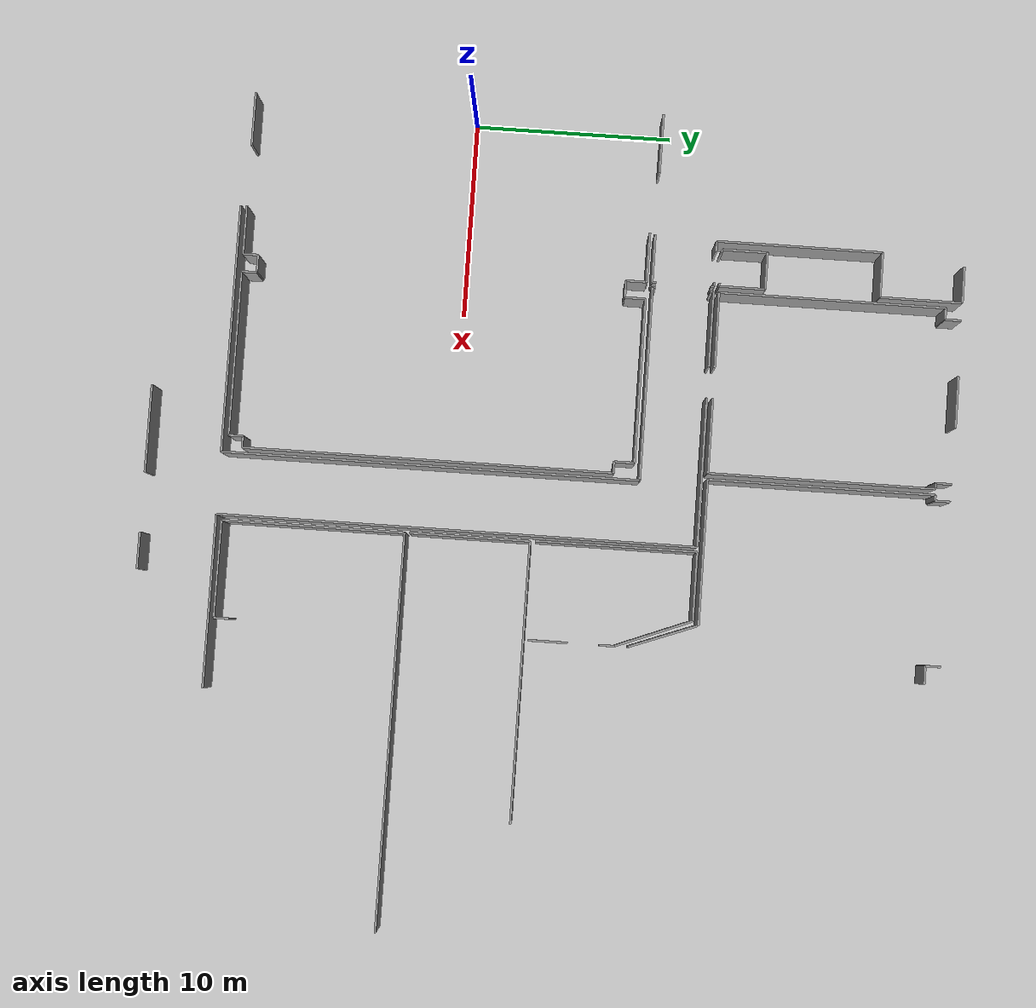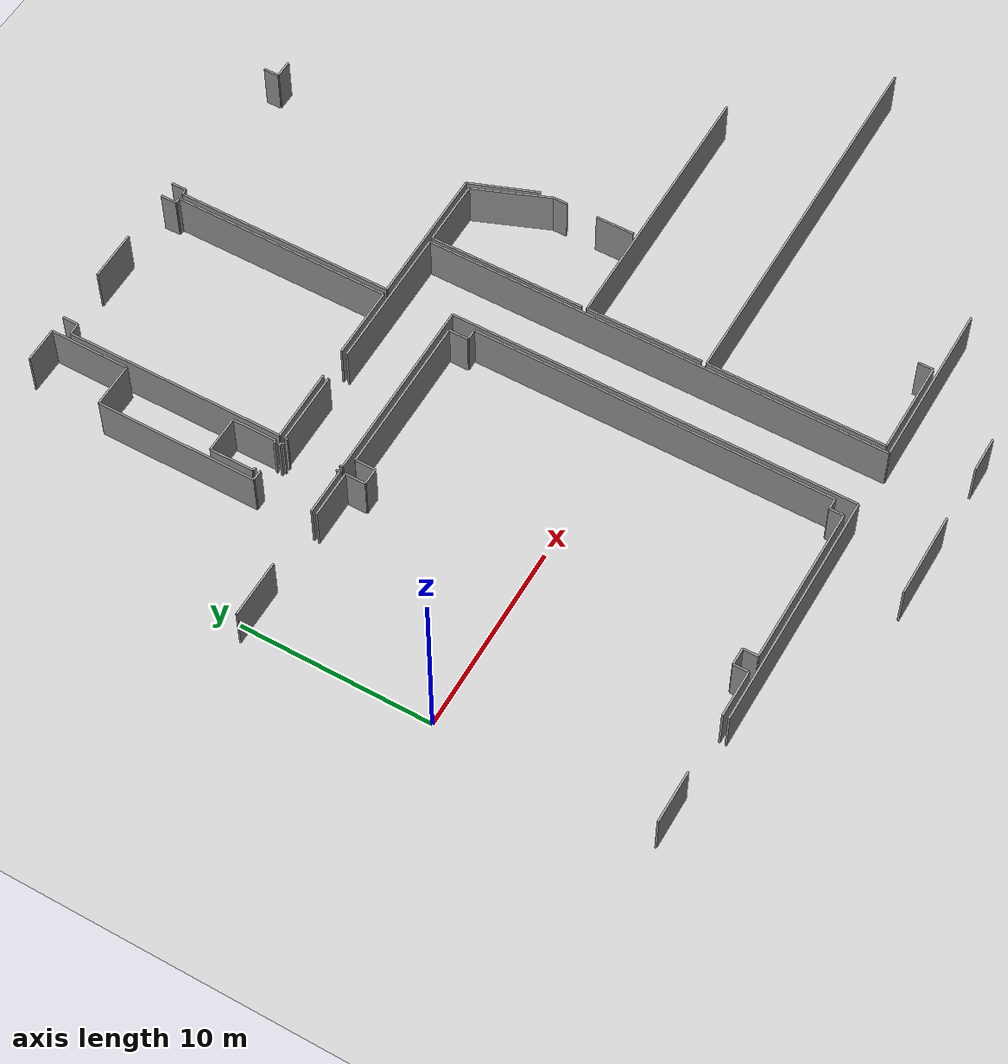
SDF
<sdf version="1.6">
 <world name="default">
  <model name="ground_plane">
   <static>1</static>
   <link name="link">
    <collision name="collision">
     <geometry><plane><normal>0 0 1</normal><size>100 100</size></plane></geometry>
     <surface><friction><ode><mu>100</mu><mu2>50</mu2></ode></friction></surface>
    </collision>
    <visual name="visual">
     <cast_shadows>0</cast_shadows>
     <geometry><plane><normal>0 0 1</normal><size>100 100</size></plane></geometry>
     <material>
      <script><uri>file://media/materials/scripts/gazebo.material</uri><name>Gazebo/Grey</name></script>
     </material>
    </visual>
   </link>
  </model>
  <model name="50045366">
   <static>1</static>
   <link name="Wall_68">
    <collision name="Wall_68_Collision">
     <geometry><box><size>2.514892482 0.1 2.5</size></box></geometry>
     <pose>1.257446241 0 1.25 0 0 0</pose>
    </collision>
    <visual name="Wall_68_Visual">
     <pose>1.257446241 0 1.25 0 0 0</pose>
     <geometry><box><size>2.514892482 0.1 2.5</size></box></geometry>
     <material>
      <script><uri>file://media/materials/scripts/gazebo.material</uri><name>Gazebo/Grey</name></script>
      <ambient>1 1 1 1</ambient>
     </material>
    </visual>
    <pose>59.5367771272 -16.1177934994 0 0 0 0.0</pose>
   </link>
   <link name="Wall_69">
    <collision name="Wall_69_Collision">
     <geometry><box><size>1.05066619248 0.1 2.5</size></box></geometry>
     <pose>0.525333096239 0 1.25 0 0 0</pose>
    </collision>
    <visual name="Wall_69_Visual">
     <pose>0.525333096239 0 1.25 0 0 0</pose>
     <geometry><box><size>1.05066619248 0.1 2.5</size></box></geometry>
     <material>
      <script><uri>file://media/materials/scripts/gazebo.material</uri><name>Gazebo/Grey</name></script>
      <ambient>1 1 1 1</ambient>
     </material>
    </visual>
    <pose>62.0516696092 -16.1177934994 0 0 0 -1.57079632679</pose>
   </link>
   <link name="Wall_70">
    <collision name="Wall_70_Collision">
     <geometry><box><size>0.8621762711 0.1 2.5</size></box></geometry>
     <pose>0.43108813555 0 1.25 0 0 0</pose>
    </collision>
    <visual name="Wall_70_Visual">
     <pose>0.43108813555 0 1.25 0 0 0</pose>
     <geometry><box><size>0.8621762711 0.1 2.5</size></box></geometry>
     <material>
      <script><uri>file://media/materials/scripts/gazebo.material</uri><name>Gazebo/Grey</name></script>
      <ambient>1 1 1 1</ambient>
     </material>
    </visual>
    <pose>62.0516696092 -17.1684596919 0 0 0 0.0</pose>
   </link>
   <link name="Wall_71">
    <collision name="Wall_71_Collision">
     <geometry><box><size>1.0487609709 0.1 2.5</size></box></geometry>
     <pose>0.52438048545 0 1.25 0 0 0</pose>
    </collision>
    <visual name="Wall_71_Visual">
     <pose>0.52438048545 0 1.25 0 0 0</pose>
     <geometry><box><size>1.0487609709 0.1 2.5</size></box></geometry>
     <material>
      <script><uri>file://media/materials/scripts/gazebo.material</uri><name>Gazebo/Grey</name></script>
      <ambient>1 1 1 1</ambient>
     </material>
    </visual>
    <pose>62.9138458803 -17.1684596919 0 0 0 1.57079632679</pose>
   </link>
   <link name="Wall_72">
    <collision name="Wall_72_Collision">
     <geometry><box><size>8.38348299907 0.1 2.5</size></box></geometry>
     <pose>4.19174149954 0 1.25 0 0 0</pose>
    </collision>
    <visual name="Wall_72_Visual">
     <pose>4.19174149954 0 1.25 0 0 0</pose>
     <geometry><box><size>8.38348299907 0.1 2.5</size></box></geometry>
     <material>
      <script><uri>file://media/materials/scripts/gazebo.material</uri><name>Gazebo/Grey</name></script>
      <ambient>1 1 1 1</ambient>
     </material>
    </visual>
    <pose>62.9138458803 -16.119698721 0 0 0 0.0</pose>
   </link>
   <link name="Wall_73">
    <collision name="Wall_73_Collision">
     <geometry><box><size>1.02627935629 0.1 2.5</size></box></geometry>
     <pose>0.513139678145 0 1.25 0 0 0</pose>
    </collision>
    <visual name="Wall_73_Visual">
     <pose>0.513139678145 0 1.25 0 0 0</pose>
     <geometry><box><size>1.02627935629 0.1 2.5</size></box></geometry>
     <material>
      <script><uri>file://media/materials/scripts/gazebo.material</uri><name>Gazebo/Grey</name></script>
      <ambient>1 1 1 1</ambient>
     </material>
    </visual>
    <pose>71.2973288793 -16.119698721 0 0 0 -1.57079632679</pose>
   </link>
   <link name="Wall_74">
    <collision name="Wall_74_Collision">
     <geometry><box><size>0.579568403805 0.1 2.5</size></box></geometry>
     <pose>0.289784201903 0 1.25 0 0 0</pose>
    </collision>
    <visual name="Wall_74_Visual">
     <pose>0.289784201903 0 1.25 0 0 0</pose>
     <geometry><box><size>0.579568403805 0.1 2.5</size></box></geometry>
     <material>
      <script><uri>file://media/materials/scripts/gazebo.material</uri><name>Gazebo/Grey</name></script>
      <ambient>1 1 1 1</ambient>
     </material>
    </visual>
    <pose>71.2973288793 -17.1459780773 0 0 0 0.0</pose>
   </link>
   <link name="Wall_75">
    <collision name="Wall_75_Collision">
     <geometry><box><size>18.8131739721 0.1 2.5</size></box></geometry>
     <pose>9.40658698607 0 1.25 0 0 0</pose>
    </collision>
    <visual name="Wall_75_Visual">
     <pose>9.40658698607 0 1.25 0 0 0</pose>
     <geometry><box><size>18.8131739721 0.1 2.5</size></box></geometry>
     <material>
      <script><uri>file://media/materials/scripts/gazebo.material</uri><name>Gazebo/Grey</name></script>
      <ambient>1 1 1 1</ambient>
     </material>
    </visual>
    <pose>71.8768972832 -17.1459780773 0 0 0 -1.57079632679</pose>
   </link>
   <link name="Wall_76">
    <collision name="Wall_76_Collision">
     <geometry><box><size>0.577155123141 0.1 2.5</size></box></geometry>
     <pose>0.28857756157 0 1.25 0 0 0</pose>
    </collision>
    <visual name="Wall_76_Visual">
     <pose>0.28857756157 0 1.25 0 0 0</pose>
     <geometry><box><size>0.577155123141 0.1 2.5</size></box></geometry>
     <material>
      <script><uri>file://media/materials/scripts/gazebo.material</uri><name>Gazebo/Grey</name></script>
      <ambient>1 1 1 1</ambient>
     </material>
    </visual>
    <pose>71.8768972832 -35.9591520494 0 0 0 3.14159265359</pose>
   </link>
   <link name="Wall_77">
    <collision name="Wall_77_Collision">
     <geometry><box><size>0.726143450483 0.1 2.5</size></box></geometry>
     <pose>0.363071725242 0 1.25 0 0 0</pose>
    </collision>
    <visual name="Wall_77_Visual">
     <pose>0.363071725242 0 1.25 0 0 0</pose>
     <geometry><box><size>0.726143450483 0.1 2.5</size></box></geometry>
     <material>
      <script><uri>file://media/materials/scripts/gazebo.material</uri><name>Gazebo/Grey</name></script>
      <ambient>1 1 1 1</ambient>
     </material>
    </visual>
    <pose>71.29974216 -35.9591520494 0 0 0 -1.57079632679</pose>
   </link>
   <link name="Wall_78">
    <collision name="Wall_78_Collision">
     <geometry><box><size>8.37446495027 0.1 2.5</size></box></geometry>
     <pose>4.18723247514 0 1.25 0 0 0</pose>
    </collision>
    <visual name="Wall_78_Visual">
     <pose>4.18723247514 0 1.25 0 0 0</pose>
     <geometry><box><size>8.37446495027 0.1 2.5</size></box></geometry>
     <material>
      <script><uri>file://media/materials/scripts/gazebo.material</uri><name>Gazebo/Grey</name></script>
      <ambient>1 1 1 1</ambient>
     </material>
    </visual>
    <pose>71.29974216 -36.6852954999 0 0 0 3.14159265359</pose>
   </link>
   <link name="Wall_79">
    <collision name="Wall_79_Collision">
     <geometry><box><size>0.77415503423 0.1 2.5</size></box></geometry>
     <pose>0.387077517115 0 1.25 0 0 0</pose>
    </collision>
    <visual name="Wall_79_Visual">
     <pose>0.387077517115 0 1.25 0 0 0</pose>
     <geometry><box><size>0.77415503423 0.1 2.5</size></box></geometry>
     <material>
      <script><uri>file://media/materials/scripts/gazebo.material</uri><name>Gazebo/Grey</name></script>
      <ambient>1 1 1 1</ambient>
     </material>
    </visual>
    <pose>62.9252772097 -36.6852954999 0 0 0 1.57079632679</pose>
   </link>
   <link name="Wall_80">
    <collision name="Wall_80_Collision">
     <geometry><box><size>0.896851303807 0.1 2.5</size></box></geometry>
     <pose>0.448425651903 0 1.25 0 0 0</pose>
    </collision>
    <visual name="Wall_80_Visual">
     <pose>0.448425651903 0 1.25 0 0 0</pose>
     <geometry><box><size>0.896851303807 0.1 2.5</size></box></geometry>
     <material>
      <script><uri>file://media/materials/scripts/gazebo.material</uri><name>Gazebo/Grey</name></script>
      <ambient>1 1 1 1</ambient>
     </material>
    </visual>
    <pose>62.9252772097 -35.9111404656 0 0 0 3.14159265359</pose>
   </link>
   <link name="Wall_81">
    <collision name="Wall_81_Collision">
     <geometry><box><size>0.772376827425 0.1 2.5</size></box></geometry>
     <pose>0.386188413713 0 1.25 0 0 0</pose>
    </collision>
    <visual name="Wall_81_Visual">
     <pose>0.386188413713 0 1.25 0 0 0</pose>
     <geometry><box><size>0.772376827425 0.1 2.5</size></box></geometry>
     <material>
      <script><uri>file://media/materials/scripts/gazebo.material</uri><name>Gazebo/Grey</name></script>
      <ambient>1 1 1 1</ambient>
     </material>
    </visual>
    <pose>62.0284259059 -35.9111404656 0 0 0 -1.57079632679</pose>
   </link>
   <link name="Wall_82">
    <collision name="Wall_82_Collision">
     <geometry><box><size>2.47907431634 0.1 2.5</size></box></geometry>
     <pose>1.23953715817 0 1.25 0 0 0</pose>
    </collision>
    <visual name="Wall_82_Visual">
     <pose>1.23953715817 0 1.25 0 0 0</pose>
     <geometry><box><size>2.47907431634 0.1 2.5</size></box></geometry>
     <material>
      <script><uri>file://media/materials/scripts/gazebo.material</uri><name>Gazebo/Grey</name></script>
      <ambient>1 1 1 1</ambient>
     </material>
    </visual>
    <pose>62.0284259059 -36.6835172931 0 0 0 3.14159265359</pose>
   </link>
   <link name="Wall_83">
    <collision name="Wall_83_Collision">
     <geometry><box><size>2.71519477715 0.1 2.5</size></box></geometry>
     <pose>1.35759738858 0 1.25 0 0 0</pose>
    </collision>
    <visual name="Wall_83_Visual">
     <pose>1.35759738858 0 1.25 0 0 0</pose>
     <geometry><box><size>2.71519477715 0.1 2.5</size></box></geometry>
     <material>
      <script><uri>file://media/materials/scripts/gazebo.material</uri><name>Gazebo/Grey</name></script>
      <ambient>1 1 1 1</ambient>
     </material>
    </visual>
    <pose>56.4070061348 -36.6835172931 0 0 0 3.14159265359</pose>
   </link>
   <link name="Wall_198">
    <collision name="Wall_198_Collision">
     <geometry><box><size>1.8591152151 0.1 2.5</size></box></geometry>
     <pose>0.92955760755 0 1.25 0 0 0</pose>
    </collision>
    <visual name="Wall_198_Visual">
     <pose>0.92955760755 0 1.25 0 0 0</pose>
     <geometry><box><size>1.8591152151 0.1 2.5</size></box></geometry>
     <material>
      <script><uri>file://media/materials/scripts/gazebo.material</uri><name>Gazebo/Grey</name></script>
      <ambient>1 1 1 1</ambient>
     </material>
    </visual>
    <pose>60.155847125 -0.0548703814254 0 0 0 0.0</pose>
   </link>
   <link name="Wall_199">
    <collision name="Wall_199_Collision">
     <geometry><box><size>4.18297748028 0.1 2.5</size></box></geometry>
     <pose>2.09148874014 0 1.25 0 0 0</pose>
    </collision>
    <visual name="Wall_199_Visual">
     <pose>2.09148874014 0 1.25 0 0 0</pose>
     <geometry><box><size>4.18297748028 0.1 2.5</size></box></geometry>
     <material>
      <script><uri>file://media/materials/scripts/gazebo.material</uri><name>Gazebo/Grey</name></script>
      <ambient>1 1 1 1</ambient>
     </material>
    </visual>
    <pose>62.0149623401 -0.0548703814254 0 0 0 -1.57079632679</pose>
   </link>
   <link name="Wall_200">
    <collision name="Wall_200_Collision">
     <geometry><box><size>2.3021427392 0.1 2.5</size></box></geometry>
     <pose>1.1510713696 0 1.25 0 0 0</pose>
    </collision>
    <visual name="Wall_200_Visual">
     <pose>1.1510713696 0 1.25 0 0 0</pose>
     <geometry><box><size>2.3021427392 0.1 2.5</size></box></geometry>
     <material>
      <script><uri>file://media/materials/scripts/gazebo.material</uri><name>Gazebo/Grey</name></script>
      <ambient>1 1 1 1</ambient>
     </material>
    </visual>
    <pose>62.0149623401 -4.23784786171 0 0 0 3.14159265359</pose>
   </link>
   <link name="Wall_201">
    <collision name="Wall_201_Collision">
     <geometry><box><size>8.4532141088 0.1 2.5</size></box></geometry>
     <pose>4.2266070544 0 1.25 0 0 0</pose>
    </collision>
    <visual name="Wall_201_Visual">
     <pose>4.2266070544 0 1.25 0 0 0</pose>
     <geometry><box><size>8.4532141088 0.1 2.5</size></box></geometry>
     <material>
      <script><uri>file://media/materials/scripts/gazebo.material</uri><name>Gazebo/Grey</name></script>
      <ambient>1 1 1 1</ambient>
     </material>
    </visual>
    <pose>59.7128196009 -4.23784786171 0 0 0 -1.57079632679</pose>
   </link>
   <link name="Wall_202">
    <collision name="Wall_202_Collision">
     <geometry><box><size>0.552006198321 0.1 2.5</size></box></geometry>
     <pose>0.27600309916 0 1.25 0 0 0</pose>
    </collision>
    <visual name="Wall_202_Visual">
     <pose>0.27600309916 0 1.25 0 0 0</pose>
     <geometry><box><size>0.552006198321 0.1 2.5</size></box></geometry>
     <material>
      <script><uri>file://media/materials/scripts/gazebo.material</uri><name>Gazebo/Grey</name></script>
      <ambient>1 1 1 1</ambient>
     </material>
    </visual>
    <pose>59.7128196009 -12.6910619705 0 0 0 0.0</pose>
   </link>
   <link name="Wall_203">
    <collision name="Wall_203_Collision">
     <geometry><box><size>0.208431240553 0.1 2.5</size></box></geometry>
     <pose>0.104215620277 0 1.25 0 0 0</pose>
    </collision>
    <visual name="Wall_203_Visual">
     <pose>0.104215620277 0 1.25 0 0 0</pose>
     <geometry><box><size>0.208431240553 0.1 2.5</size></box></geometry>
     <material>
      <script><uri>file://media/materials/scripts/gazebo.material</uri><name>Gazebo/Grey</name></script>
      <ambient>1 1 1 1</ambient>
     </material>
    </visual>
    <pose>61.8337122607 -12.6910619705 0 0 0 0.0</pose>
   </link>
   <link name="Wall_204">
    <collision name="Wall_204_Collision">
     <geometry><box><size>0.149242356886 0.1 2.5</size></box></geometry>
     <pose>0.0746211784431 0 1.25 0 0 0</pose>
    </collision>
    <visual name="Wall_204_Visual">
     <pose>0.0746211784431 0 1.25 0 0 0</pose>
     <geometry><box><size>0.149242356886 0.1 2.5</size></box></geometry>
     <material>
      <script><uri>file://media/materials/scripts/gazebo.material</uri><name>Gazebo/Grey</name></script>
      <ambient>1 1 1 1</ambient>
     </material>
    </visual>
    <pose>62.0421435013 -12.6910619705 0 0 0 -1.57079632679</pose>
   </link>
   <link name="Wall_205">
    <collision name="Wall_205_Collision">
     <geometry><box><size>0.201572442875 0.1 2.5</size></box></geometry>
     <pose>0.100786221438 0 1.25 0 0 0</pose>
    </collision>
    <visual name="Wall_205_Visual">
     <pose>0.100786221438 0 1.25 0 0 0</pose>
     <geometry><box><size>0.201572442875 0.1 2.5</size></box></geometry>
     <material>
      <script><uri>file://media/materials/scripts/gazebo.material</uri><name>Gazebo/Grey</name></script>
      <ambient>1 1 1 1</ambient>
     </material>
    </visual>
    <pose>62.0421435013 -15.6356454256 0 0 0 -1.57079632679</pose>
   </link>
   <link name="Wall_206">
    <collision name="Wall_206_Collision">
     <geometry><box><size>2.46764298688 0.1 2.5</size></box></geometry>
     <pose>1.23382149344 0 1.25 0 0 0</pose>
    </collision>
    <visual name="Wall_206_Visual">
     <pose>1.23382149344 0 1.25 0 0 0</pose>
     <geometry><box><size>2.46764298688 0.1 2.5</size></box></geometry>
     <material>
      <script><uri>file://media/materials/scripts/gazebo.material</uri><name>Gazebo/Grey</name></script>
      <ambient>1 1 1 1</ambient>
     </material>
    </visual>
    <pose>62.0421435013 -15.8372178684 0 0 0 3.14159265359</pose>
   </link>
   <link name="Wall_207">
    <collision name="Wall_207_Collision">
     <geometry><box><size>3.02109009364 0.1 2.5</size></box></geometry>
     <pose>1.51054504682 0 1.25 0 0 0</pose>
    </collision>
    <visual name="Wall_207_Visual">
     <pose>1.51054504682 0 1.25 0 0 0</pose>
     <geometry><box><size>3.02109009364 0.1 2.5</size></box></geometry>
     <material>
      <script><uri>file://media/materials/scripts/gazebo.material</uri><name>Gazebo/Grey</name></script>
      <ambient>1 1 1 1</ambient>
     </material>
    </visual>
    <pose>56.3940506281 -15.8372178684 0 0 0 3.13621116255</pose>
   </link>
   <link name="Wall_208">
    <collision name="Wall_208_Collision">
     <geometry><box><size>2.28626589272 0.1 2.5</size></box></geometry>
     <pose>1.14313294636 0 1.25 0 0 0</pose>
    </collision>
    <visual name="Wall_208_Visual">
     <pose>1.14313294636 0 1.25 0 0 0</pose>
     <geometry><box><size>2.28626589272 0.1 2.5</size></box></geometry>
     <material>
      <script><uri>file://media/materials/scripts/gazebo.material</uri><name>Gazebo/Grey</name></script>
      <ambient>1 1 1 1</ambient>
     </material>
    </visual>
    <pose>60.1205370185 -12.3716198194 0 0 0 1.57079632679</pose>
   </link>
   <link name="Wall_209">
    <collision name="Wall_209_Collision">
     <geometry><box><size>1.88858264216 0.1 2.5</size></box></geometry>
     <pose>0.944291321081 0 1.25 0 0 0</pose>
    </collision>
    <visual name="Wall_209_Visual">
     <pose>0.944291321081 0 1.25 0 0 0</pose>
     <geometry><box><size>1.88858264216 0.1 2.5</size></box></geometry>
     <material>
      <script><uri>file://media/materials/scripts/gazebo.material</uri><name>Gazebo/Grey</name></script>
      <ambient>1 1 1 1</ambient>
     </material>
    </visual>
    <pose>60.1205370185 -10.0853539267 0 0 0 0.0</pose>
   </link>
   <link name="Wall_210">
    <collision name="Wall_210_Collision">
     <geometry><box><size>2.32564047199 0.1 2.5</size></box></geometry>
     <pose>1.16282023599 0 1.25 0 0 0</pose>
    </collision>
    <visual name="Wall_210_Visual">
     <pose>1.16282023599 0 1.25 0 0 0</pose>
     <geometry><box><size>2.32564047199 0.1 2.5</size></box></geometry>
     <material>
      <script><uri>file://media/materials/scripts/gazebo.material</uri><name>Gazebo/Grey</name></script>
      <ambient>1 1 1 1</ambient>
     </material>
    </visual>
    <pose>62.0091196606 -10.0853539267 0 0 0 -1.57079632679</pose>
   </link>
   <link name="Wall_211">
    <collision name="Wall_211_Collision">
     <geometry><box><size>0.16905666129 0.1 2.5</size></box></geometry>
     <pose>0.0845283306449 0 1.25 0 0 0</pose>
    </collision>
    <visual name="Wall_211_Visual">
     <pose>0.0845283306449 0 1.25 0 0 0</pose>
     <geometry><box><size>0.16905666129 0.1 2.5</size></box></geometry>
     <material>
      <script><uri>file://media/materials/scripts/gazebo.material</uri><name>Gazebo/Grey</name></script>
      <ambient>1 1 1 1</ambient>
     </material>
    </visual>
    <pose>62.0091196606 -12.4109943986 0 0 0 3.14159265359</pose>
   </link>
   <link name="Wall_212">
    <collision name="Wall_212_Collision">
     <geometry><box><size>0.178657191913 0.1 2.5</size></box></geometry>
     <pose>0.0893285959566 0 1.25 0 0 0</pose>
    </collision>
    <visual name="Wall_212_Visual">
     <pose>0.0893285959566 0 1.25 0 0 0</pose>
     <geometry><box><size>0.178657191913 0.1 2.5</size></box></geometry>
     <material>
      <script><uri>file://media/materials/scripts/gazebo.material</uri><name>Gazebo/Grey</name></script>
      <ambient>1 1 1 1</ambient>
     </material>
    </visual>
    <pose>60.2948012854 -12.4109943986 0 0 0 2.9193765295</pose>
   </link>
   <link name="Wall_213">
    <collision name="Wall_213_Collision">
     <geometry><box><size>11.532433222 0.1 2.5</size></box></geometry>
     <pose>5.76621661099 0 1.25 0 0 0</pose>
    </collision>
    <visual name="Wall_213_Visual">
     <pose>5.76621661099 0 1.25 0 0 0</pose>
     <geometry><box><size>11.532433222 0.1 2.5</size></box></geometry>
     <material>
      <script><uri>file://media/materials/scripts/gazebo.material</uri><name>Gazebo/Grey</name></script>
      <ambient>1 1 1 1</ambient>
     </material>
    </visual>
    <pose>62.3299589742 -12.4098512657 0 0 0 1.57079632679</pose>
   </link>
   <link name="Wall_214">
    <collision name="Wall_214_Collision">
     <geometry><box><size>0.590999733269 0.1 2.5</size></box></geometry>
     <pose>0.295499866634 0 1.25 0 0 0</pose>
    </collision>
    <visual name="Wall_214_Visual">
     <pose>0.295499866634 0 1.25 0 0 0</pose>
     <geometry><box><size>0.590999733269 0.1 2.5</size></box></geometry>
     <material>
      <script><uri>file://media/materials/scripts/gazebo.material</uri><name>Gazebo/Grey</name></script>
      <ambient>1 1 1 1</ambient>
     </material>
    </visual>
    <pose>62.3299589742 -0.877418043718 0 0 0 0.0</pose>
   </link>
   <link name="Wall_215">
    <collision name="Wall_215_Collision">
     <geometry><box><size>0.835249139475 0.1 2.5</size></box></geometry>
     <pose>0.417624569737 0 1.25 0 0 0</pose>
    </collision>
    <visual name="Wall_215_Visual">
     <pose>0.417624569737 0 1.25 0 0 0</pose>
     <geometry><box><size>0.835249139475 0.1 2.5</size></box></geometry>
     <material>
      <script><uri>file://media/materials/scripts/gazebo.material</uri><name>Gazebo/Grey</name></script>
      <ambient>1 1 1 1</ambient>
     </material>
    </visual>
    <pose>62.9209587075 -0.877418043718 0 0 0 1.57079632679</pose>
   </link>
   <link name="Wall_216">
    <collision name="Wall_216_Collision">
     <geometry><box><size>2.64597172651 0.1 2.5</size></box></geometry>
     <pose>1.32298586326 0 1.25 0 0 0</pose>
    </collision>
    <visual name="Wall_216_Visual">
     <pose>1.32298586326 0 1.25 0 0 0</pose>
     <geometry><box><size>2.64597172651 0.1 2.5</size></box></geometry>
     <material>
      <script><uri>file://media/materials/scripts/gazebo.material</uri><name>Gazebo/Grey</name></script>
      <ambient>1 1 1 1</ambient>
     </material>
    </visual>
    <pose>65.7742185416 -0.0421689042436 0 0 0 0.0</pose>
   </link>
   <link name="Wall_217">
    <collision name="Wall_217_Collision">
     <geometry><box><size>0.83143869632 0.1 2.5</size></box></geometry>
     <pose>0.41571934816 0 1.25 0 0 0</pose>
    </collision>
    <visual name="Wall_217_Visual">
     <pose>0.41571934816 0 1.25 0 0 0</pose>
     <geometry><box><size>0.83143869632 0.1 2.5</size></box></geometry>
     <material>
      <script><uri>file://media/materials/scripts/gazebo.material</uri><name>Gazebo/Grey</name></script>
      <ambient>1 1 1 1</ambient>
     </material>
    </visual>
    <pose>71.2681154818 -0.0421689042436 0 0 0 -1.57079632679</pose>
   </link>
   <link name="Wall_218">
    <collision name="Wall_218_Collision">
     <geometry><box><size>0.290482783148 0.1 2.5</size></box></geometry>
     <pose>0.145241391574 0 1.25 0 0 0</pose>
    </collision>
    <visual name="Wall_218_Visual">
     <pose>0.145241391574 0 1.25 0 0 0</pose>
     <geometry><box><size>0.290482783148 0.1 2.5</size></box></geometry>
     <material>
      <script><uri>file://media/materials/scripts/gazebo.material</uri><name>Gazebo/Grey</name></script>
      <ambient>1 1 1 1</ambient>
     </material>
    </visual>
    <pose>71.2681154818 -0.873607600564 0 0 0 0.0</pose>
   </link>
   <link name="Wall_219">
    <collision name="Wall_219_Collision">
     <geometry><box><size>11.5121108585 0.1 2.5</size></box></geometry>
     <pose>5.75605542925 0 1.25 0 0 0</pose>
    </collision>
    <visual name="Wall_219_Visual">
     <pose>5.75605542925 0 1.25 0 0 0</pose>
     <geometry><box><size>11.5121108585 0.1 2.5</size></box></geometry>
     <material>
      <script><uri>file://media/materials/scripts/gazebo.material</uri><name>Gazebo/Grey</name></script>
      <ambient>1 1 1 1</ambient>
     </material>
    </visual>
    <pose>71.558598265 -0.873607600564 0 0 0 -1.57079632679</pose>
   </link>
   <link name="Wall_220">
    <collision name="Wall_220_Collision">
     <geometry><box><size>3.81412658292 0.1 2.5</size></box></geometry>
     <pose>1.90706329146 0 1.25 0 0 0</pose>
    </collision>
    <visual name="Wall_220_Visual">
     <pose>1.90706329146 0 1.25 0 0 0</pose>
     <geometry><box><size>3.81412658292 0.1 2.5</size></box></geometry>
     <material>
      <script><uri>file://media/materials/scripts/gazebo.material</uri><name>Gazebo/Grey</name></script>
      <ambient>1 1 1 1</ambient>
     </material>
    </visual>
    <pose>71.558598265 -12.3857184591 0 0 0 3.14159265359</pose>
   </link>
   <link name="Wall_221">
    <collision name="Wall_221_Collision">
     <geometry><box><size>3.84316172159 0.1 2.5</size></box></geometry>
     <pose>1.9215808608 0 1.25 0 0 0</pose>
    </collision>
    <visual name="Wall_221_Visual">
     <pose>1.9215808608 0 1.25 0 0 0</pose>
     <geometry><box><size>3.84316172159 0.1 2.5</size></box></geometry>
     <material>
      <script><uri>file://media/materials/scripts/gazebo.material</uri><name>Gazebo/Grey</name></script>
      <ambient>1 1 1 1</ambient>
     </material>
    </visual>
    <pose>66.1730449251 -12.3857184591 0 0 0 -3.13531319751</pose>
   </link>
   <link name="Wall_225">
    <collision name="Wall_225_Collision">
     <geometry><box><size>12.6043108814 0.1 2.5</size></box></geometry>
     <pose>6.30215544068 0 1.25 0 0 0</pose>
    </collision>
    <visual name="Wall_225_Visual">
     <pose>6.30215544068 0 1.25 0 0 0</pose>
     <geometry><box><size>12.6043108814 0.1 2.5</size></box></geometry>
     <material>
      <script><uri>file://media/materials/scripts/gazebo.material</uri><name>Gazebo/Grey</name></script>
      <ambient>1 1 1 1</ambient>
     </material>
    </visual>
    <pose>59.5532890475 -36.9972437795 0 0 0 0.0</pose>
   </link>
   <link name="Wall_226">
    <collision name="Wall_226_Collision">
     <geometry><box><size>21.1980033278 0.1 2.5</size></box></geometry>
     <pose>10.5990016639 0 1.25 0 0 0</pose>
    </collision>
    <visual name="Wall_226_Visual">
     <pose>10.5990016639 0 1.25 0 0 0</pose>
     <geometry><box><size>21.1980033278 0.1 2.5</size></box></geometry>
     <material>
      <script><uri>file://media/materials/scripts/gazebo.material</uri><name>Gazebo/Grey</name></script>
      <ambient>1 1 1 1</ambient>
     </material>
    </visual>
    <pose>72.1575999289 -36.9972437795 0 0 0 1.57079632679</pose>
   </link>
   <link name="Wall_227">
    <collision name="Wall_227_Collision">
     <geometry><box><size>9.84491496361 0.1 2.5</size></box></geometry>
     <pose>4.92245748181 0 1.25 0 0 0</pose>
    </collision>
    <visual name="Wall_227_Visual">
     <pose>4.92245748181 0 1.25 0 0 0</pose>
     <geometry><box><size>9.84491496361 0.1 2.5</size></box></geometry>
     <material>
      <script><uri>file://media/materials/scripts/gazebo.material</uri><name>Gazebo/Grey</name></script>
      <ambient>1 1 1 1</ambient>
     </material>
    </visual>
    <pose>72.1575999289 -15.7992404517 0 0 0 3.14159265359</pose>
   </link>
   <link name="Wall_228">
    <collision name="Wall_228_Collision">
     <geometry><box><size>0.152544740953 0.1 2.5</size></box></geometry>
     <pose>0.0762723704767 0 1.25 0 0 0</pose>
    </collision>
    <visual name="Wall_228_Visual">
     <pose>0.0762723704767 0 1.25 0 0 0</pose>
     <geometry><box><size>0.152544740953 0.1 2.5</size></box></geometry>
     <material>
      <script><uri>file://media/materials/scripts/gazebo.material</uri><name>Gazebo/Grey</name></script>
      <ambient>1 1 1 1</ambient>
     </material>
    </visual>
    <pose>62.3126849653 -15.7992404517 0 0 0 1.57079632679</pose>
   </link>
   <link name="Wall_229">
    <collision name="Wall_229_Collision">
     <geometry><box><size>0.164611144276 0.1 2.5</size></box></geometry>
     <pose>0.082305572138 0 1.25 0 0 0</pose>
    </collision>
    <visual name="Wall_229_Visual">
     <pose>0.082305572138 0 1.25 0 0 0</pose>
     <geometry><box><size>0.164611144276 0.1 2.5</size></box></geometry>
     <material>
      <script><uri>file://media/materials/scripts/gazebo.material</uri><name>Gazebo/Grey</name></script>
      <ambient>1 1 1 1</ambient>
     </material>
    </visual>
    <pose>62.3126849653 -12.8523707307 0 0 0 1.57079632679</pose>
   </link>
   <link name="Wall_230">
    <collision name="Wall_230_Collision">
     <geometry><box><size>3.84092669978 0.1 2.5</size></box></geometry>
     <pose>1.92046334989 0 1.25 0 0 0</pose>
    </collision>
    <visual name="Wall_230_Visual">
     <pose>1.92046334989 0 1.25 0 0 0</pose>
     <geometry><box><size>3.84092669978 0.1 2.5</size></box></geometry>
     <material>
      <script><uri>file://media/materials/scripts/gazebo.material</uri><name>Gazebo/Grey</name></script>
      <ambient>1 1 1 1</ambient>
     </material>
    </visual>
    <pose>62.3126849653 -12.6877595864 0 0 0 0.0</pose>
   </link>
   <link name="Wall_231">
    <collision name="Wall_231_Collision">
     <geometry><box><size>7.58837052749 0.1 2.5</size></box></geometry>
     <pose>3.79418526375 0 1.25 0 0 0</pose>
    </collision>
    <visual name="Wall_231_Visual">
     <pose>3.79418526375 0 1.25 0 0 0</pose>
     <geometry><box><size>7.58837052749 0.1 2.5</size></box></geometry>
     <material>
      <script><uri>file://media/materials/scripts/gazebo.material</uri><name>Gazebo/Grey</name></script>
      <ambient>1 1 1 1</ambient>
     </material>
    </visual>
    <pose>67.7379939287 -12.6877595864 0 0 0 0.0</pose>
   </link>
   <link name="Wall_232">
    <collision name="Wall_232_Collision">
     <geometry><box><size>24.3012282328 0.1 2.5</size></box></geometry>
     <pose>12.1506141164 0 1.25 0 0 0</pose>
    </collision>
    <visual name="Wall_232_Visual">
     <pose>12.1506141164 0 1.25 0 0 0</pose>
     <geometry><box><size>24.3012282328 0.1 2.5</size></box></geometry>
     <material>
      <script><uri>file://media/materials/scripts/gazebo.material</uri><name>Gazebo/Grey</name></script>
      <ambient>1 1 1 1</ambient>
     </material>
    </visual>
    <pose>75.3263644562 -12.6877595864 0 0 0 -1.57079632679</pose>
   </link>
   <link name="Wall_233">
    <collision name="Wall_233_Collision">
     <geometry><box><size>8.7736723781 0.1 2.5</size></box></geometry>
     <pose>4.38683618905 0 1.25 0 0 0</pose>
    </collision>
    <visual name="Wall_233_Visual">
     <pose>4.38683618905 0 1.25 0 0 0</pose>
     <geometry><box><size>8.7736723781 0.1 2.5</size></box></geometry>
     <material>
      <script><uri>file://media/materials/scripts/gazebo.material</uri><name>Gazebo/Grey</name></script>
      <ambient>1 1 1 1</ambient>
     </material>
    </visual>
    <pose>75.3263644562 -36.9889878193 0 0 0 0.0</pose>
   </link>
   <link name="Wall_247">
    <collision name="Wall_247_Collision">
     <geometry><box><size>1.86965744116 0.1 2.5</size></box></geometry>
     <pose>0.93482872058 0 1.25 0 0 0</pose>
    </collision>
    <visual name="Wall_247_Visual">
     <pose>0.93482872058 0 1.25 0 0 0</pose>
     <geometry><box><size>1.86965744116 0.1 2.5</size></box></geometry>
     <material>
      <script><uri>file://media/materials/scripts/gazebo.material</uri><name>Gazebo/Grey</name></script>
      <ambient>1 1 1 1</ambient>
     </material>
    </visual>
    <pose>78.3602392958 -40.7622156457 0 0 0 3.14159265359</pose>
   </link>
   <link name="Wall_248">
    <collision name="Wall_248_Collision">
     <geometry><box><size>4.45161372268 0.1 2.5</size></box></geometry>
     <pose>2.22580686134 0 1.25 0 0 0</pose>
    </collision>
    <visual name="Wall_248_Visual">
     <pose>2.22580686134 0 1.25 0 0 0</pose>
     <geometry><box><size>4.45161372268 0.1 2.5</size></box></geometry>
     <material>
      <script><uri>file://media/materials/scripts/gazebo.material</uri><name>Gazebo/Grey</name></script>
      <ambient>1 1 1 1</ambient>
     </material>
    </visual>
    <pose>73.4573420889 -40.7622156457 0 0 0 3.14159265359</pose>
   </link>
   <link name="Wall_364">
    <collision name="Wall_364_Collision">
     <geometry><box><size>9.2554394076 0.1 2.5</size></box></geometry>
     <pose>4.6277197038 0 1.25 0 0 0</pose>
    </collision>
    <visual name="Wall_364_Visual">
     <pose>4.6277197038 0 1.25 0 0 0</pose>
     <geometry><box><size>9.2554394076 0.1 2.5</size></box></geometry>
     <material>
      <script><uri>file://media/materials/scripts/gazebo.material</uri><name>Gazebo/Grey</name></script>
      <ambient>1 1 1 1</ambient>
     </material>
    </visual>
    <pose>75.6163391802 -36.7032045827 0 0 0 1.57079632679</pose>
   </link>
   <link name="Wall_365">
    <collision name="Wall_365_Collision">
     <geometry><box><size>20.0020322363 0.1 2.5</size></box></geometry>
     <pose>10.0010161182 0 1.25 0 0 0</pose>
    </collision>
    <visual name="Wall_365_Visual">
     <pose>10.0010161182 0 1.25 0 0 0</pose>
     <geometry><box><size>20.0020322363 0.1 2.5</size></box></geometry>
     <material>
      <script><uri>file://media/materials/scripts/gazebo.material</uri><name>Gazebo/Grey</name></script>
      <ambient>1 1 1 1</ambient>
     </material>
    </visual>
    <pose>75.6163391802 -27.4477651751 0 0 0 0.0</pose>
   </link>
   <link name="Wall_375">
    <collision name="Wall_375_Collision">
     <geometry><box><size>0.777965477385 0.1 2.5</size></box></geometry>
     <pose>0.388982738693 0 1.25 0 0 0</pose>
    </collision>
    <visual name="Wall_375_Visual">
     <pose>0.388982738693 0 1.25 0 0 0</pose>
     <geometry><box><size>0.777965477385 0.1 2.5</size></box></geometry>
     <material>
      <script><uri>file://media/materials/scripts/gazebo.material</uri><name>Gazebo/Grey</name></script>
      <ambient>1 1 1 1</ambient>
     </material>
    </visual>
    <pose>80.5403208393 -35.9387026711 0 0 0 -1.57079632679</pose>
   </link>
   <link name="Wall_376">
    <collision name="Wall_376_Collision">
     <geometry><box><size>4.92400006564 0.1 2.5</size></box></geometry>
     <pose>2.46200003282 0 1.25 0 0 0</pose>
    </collision>
    <visual name="Wall_376_Visual">
     <pose>2.46200003282 0 1.25 0 0 0</pose>
     <geometry><box><size>4.92400006564 0.1 2.5</size></box></geometry>
     <material>
      <script><uri>file://media/materials/scripts/gazebo.material</uri><name>Gazebo/Grey</name></script>
      <ambient>1 1 1 1</ambient>
     </material>
    </visual>
    <pose>80.5403208393 -36.7166681485 0 0 0 3.13885837609</pose>
   </link>
   <link name="Wall_421">
    <collision name="Wall_421_Collision">
     <geometry><box><size>3.68477361112 0.1 2.5</size></box></geometry>
     <pose>1.84238680556 0 1.25 0 0 0</pose>
    </collision>
    <visual name="Wall_421_Visual">
     <pose>1.84238680556 0 1.25 0 0 0</pose>
     <geometry><box><size>3.68477361112 0.1 2.5</size></box></geometry>
     <material>
      <script><uri>file://media/materials/scripts/gazebo.material</uri><name>Gazebo/Grey</name></script>
      <ambient>1 1 1 1</ambient>
     </material>
    </visual>
    <pose>80.5643266312 -15.8175305788 0 0 0 1.93176576221</pose>
   </link>
   <link name="Wall_422">
    <collision name="Wall_422_Collision">
     <geometry><box><size>7.39518105956 0.1 2.5</size></box></geometry>
     <pose>3.69759052978 0 1.25 0 0 0</pose>
    </collision>
    <visual name="Wall_422_Visual">
     <pose>3.69759052978 0 1.25 0 0 0</pose>
     <geometry><box><size>7.39518105956 0.1 2.5</size></box></geometry>
     <material>
      <script><uri>file://media/materials/scripts/gazebo.material</uri><name>Gazebo/Grey</name></script>
      <ambient>1 1 1 1</ambient>
     </material>
    </visual>
    <pose>79.2629332791 -12.3702226569 0 0 0 3.14159265359</pose>
   </link>
   <link name="Wall_423">
    <collision name="Wall_423_Collision">
     <geometry><box><size>11.5091895187 0.1 2.5</size></box></geometry>
     <pose>5.75459475937 0 1.25 0 0 0</pose>
    </collision>
    <visual name="Wall_423_Visual">
     <pose>5.75459475937 0 1.25 0 0 0</pose>
     <geometry><box><size>11.5091895187 0.1 2.5</size></box></geometry>
     <material>
      <script><uri>file://media/materials/scripts/gazebo.material</uri><name>Gazebo/Grey</name></script>
      <ambient>1 1 1 1</ambient>
     </material>
    </visual>
    <pose>71.8677522196 -12.3702226569 0 0 0 1.57079632679</pose>
   </link>
   <link name="Wall_424">
    <collision name="Wall_424_Collision">
     <geometry><box><size>0.292388004725 0.1 2.5</size></box></geometry>
     <pose>0.146194002362 0 1.25 0 0 0</pose>
    </collision>
    <visual name="Wall_424_Visual">
     <pose>0.146194002362 0 1.25 0 0 0</pose>
     <geometry><box><size>0.292388004725 0.1 2.5</size></box></geometry>
     <material>
      <script><uri>file://media/materials/scripts/gazebo.material</uri><name>Gazebo/Grey</name></script>
      <ambient>1 1 1 1</ambient>
     </material>
    </visual>
    <pose>71.8677522196 -0.861033138154 0 0 0 0.0</pose>
   </link>
   <link name="Wall_425">
    <collision name="Wall_425_Collision">
     <geometry><box><size>0.79155605797 0.1 2.5</size></box></geometry>
     <pose>0.395778028985 0 1.25 0 0 0</pose>
    </collision>
    <visual name="Wall_425_Visual">
     <pose>0.395778028985 0 1.25 0 0 0</pose>
     <geometry><box><size>0.79155605797 0.1 2.5</size></box></geometry>
     <material>
      <script><uri>file://media/materials/scripts/gazebo.material</uri><name>Gazebo/Grey</name></script>
      <ambient>1 1 1 1</ambient>
     </material>
    </visual>
    <pose>72.1601402243 -0.861033138154 0 0 0 1.57079632679</pose>
   </link>
   <link name="Wall_426">
    <collision name="Wall_426_Collision">
     <geometry><box><size>0.8013361954 0.1 2.5</size></box></geometry>
     <pose>0.4006680977 0 1.25 0 0 0</pose>
    </collision>
    <visual name="Wall_426_Visual">
     <pose>0.4006680977 0 1.25 0 0 0</pose>
     <geometry><box><size>0.8013361954 0.1 2.5</size></box></geometry>
     <material>
      <script><uri>file://media/materials/scripts/gazebo.material</uri><name>Gazebo/Grey</name></script>
      <ambient>1 1 1 1</ambient>
     </material>
    </visual>
    <pose>80.4906580635 -0.0694770801844 0 0 0 -1.57079632679</pose>
   </link>
   <link name="Wall_427">
    <collision name="Wall_427_Collision">
     <geometry><box><size>0.935971853527 0.1 2.5</size></box></geometry>
     <pose>0.467985926763 0 1.25 0 0 0</pose>
    </collision>
    <visual name="Wall_427_Visual">
     <pose>0.467985926763 0 1.25 0 0 0</pose>
     <geometry><box><size>0.935971853527 0.1 2.5</size></box></geometry>
     <material>
      <script><uri>file://media/materials/scripts/gazebo.material</uri><name>Gazebo/Grey</name></script>
      <ambient>1 1 1 1</ambient>
     </material>
    </visual>
    <pose>80.4906580635 -0.870813275584 0 0 0 0.0</pose>
   </link>
   <link name="Wall_450">
    <collision name="Wall_450_Collision">
     <geometry><box><size>8.19118263454 0.1 2.5</size></box></geometry>
     <pose>4.09559131727 0 1.25 0 0 0</pose>
    </collision>
    <visual name="Wall_450_Visual">
     <pose>4.09559131727 0 1.25 0 0 0</pose>
     <geometry><box><size>8.19118263454 0.1 2.5</size></box></geometry>
     <material>
      <script><uri>file://media/materials/scripts/gazebo.material</uri><name>Gazebo/Grey</name></script>
      <ambient>1 1 1 1</ambient>
     </material>
    </visual>
    <pose>75.5665493897 -20.8591279166 0 0 0 1.57079632679</pose>
   </link>
   <link name="Wall_451">
    <collision name="Wall_451_Collision">
     <geometry><box><size>3.4946844318 0.1 2.5</size></box></geometry>
     <pose>1.7473422159 0 1.25 0 0 0</pose>
    </collision>
    <visual name="Wall_451_Visual">
     <pose>1.7473422159 0 1.25 0 0 0</pose>
     <geometry><box><size>3.4946844318 0.1 2.5</size></box></geometry>
     <material>
      <script><uri>file://media/materials/scripts/gazebo.material</uri><name>Gazebo/Grey</name></script>
      <ambient>1 1 1 1</ambient>
     </material>
    </visual>
    <pose>75.5665493897 -12.667945282 0 0 0 0.0</pose>
   </link>
   <link name="Wall_452">
    <collision name="Wall_452_Collision">
     <geometry><box><size>4.13045071805 0.1 2.5</size></box></geometry>
     <pose>2.06522535902 0 1.25 0 0 0</pose>
    </collision>
    <visual name="Wall_452_Visual">
     <pose>2.06522535902 0 1.25 0 0 0</pose>
     <geometry><box><size>4.13045071805 0.1 2.5</size></box></geometry>
     <material>
      <script><uri>file://media/materials/scripts/gazebo.material</uri><name>Gazebo/Grey</name></script>
      <ambient>1 1 1 1</ambient>
     </material>
    </visual>
    <pose>79.0612338215 -12.667945282 0 0 0 -1.19457267657</pose>
   </link>
   <link name="Wall_453">
    <collision name="Wall_453_Collision">
     <geometry><box><size>0.758786246841 0.1 2.5</size></box></geometry>
     <pose>0.37939312342 0 1.25 0 0 0</pose>
    </collision>
    <visual name="Wall_453_Visual">
     <pose>0.37939312342 0 1.25 0 0 0</pose>
     <geometry><box><size>0.758786246841 0.1 2.5</size></box></geometry>
     <material>
      <script><uri>file://media/materials/scripts/gazebo.material</uri><name>Gazebo/Grey</name></script>
      <ambient>1 1 1 1</ambient>
     </material>
    </visual>
    <pose>80.5788063152 -16.5095070557 0 0 0 -1.57079632679</pose>
   </link>
   <link name="Wall_454">
    <collision name="Wall_454_Collision">
     <geometry><box><size>2.01026279356 0.1 2.5</size></box></geometry>
     <pose>1.00513139678 0 1.25 0 0 0</pose>
    </collision>
    <visual name="Wall_454_Visual">
     <pose>1.00513139678 0 1.25 0 0 0</pose>
     <geometry><box><size>2.01026279356 0.1 2.5</size></box></geometry>
     <material>
      <script><uri>file://media/materials/scripts/gazebo.material</uri><name>Gazebo/Grey</name></script>
      <ambient>1 1 1 1</ambient>
     </material>
    </visual>
    <pose>80.5788063152 -18.8658851024 0 0 0 -1.57079632679</pose>
   </link>
   <link name="Wall_475">
    <collision name="Wall_475_Collision">
     <geometry><box><size>6.08400757008 0.1 2.5</size></box></geometry>
     <pose>3.04200378504 0 1.25 0 0 0</pose>
    </collision>
    <visual name="Wall_475_Visual">
     <pose>3.04200378504 0 1.25 0 0 0</pose>
     <geometry><box><size>6.08400757008 0.1 2.5</size></box></geometry>
     <material>
      <script><uri>file://media/materials/scripts/gazebo.material</uri><name>Gazebo/Grey</name></script>
      <ambient>1 1 1 1</ambient>
     </material>
    </visual>
    <pose>75.6045268065 -27.1925924985 0 0 0 1.57079632679</pose>
   </link>
   <link name="Wall_476">
    <collision name="Wall_476_Collision">
     <geometry><box><size>14.1851367314 0.1 2.5</size></box></geometry>
     <pose>7.0925683657 0 1.25 0 0 0</pose>
    </collision>
    <visual name="Wall_476_Visual">
     <pose>7.0925683657 0 1.25 0 0 0</pose>
     <geometry><box><size>14.1851367314 0.1 2.5</size></box></geometry>
     <material>
      <script><uri>file://media/materials/scripts/gazebo.material</uri><name>Gazebo/Grey</name></script>
      <ambient>1 1 1 1</ambient>
     </material>
    </visual>
    <pose>75.6045268065 -21.1085849284 0 0 0 0.0</pose>
   </link>
   <pose>-54.1 25.3531975969 0 0 0 0</pose>
  </model>
 </world>
</sdf>
